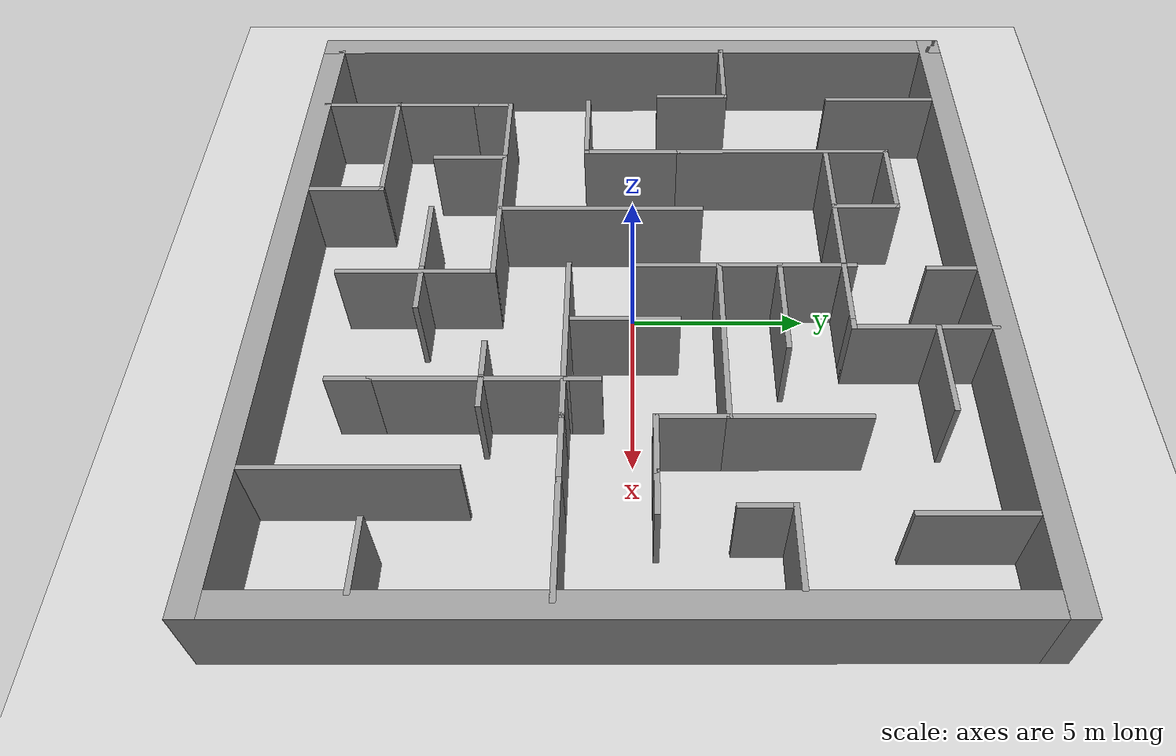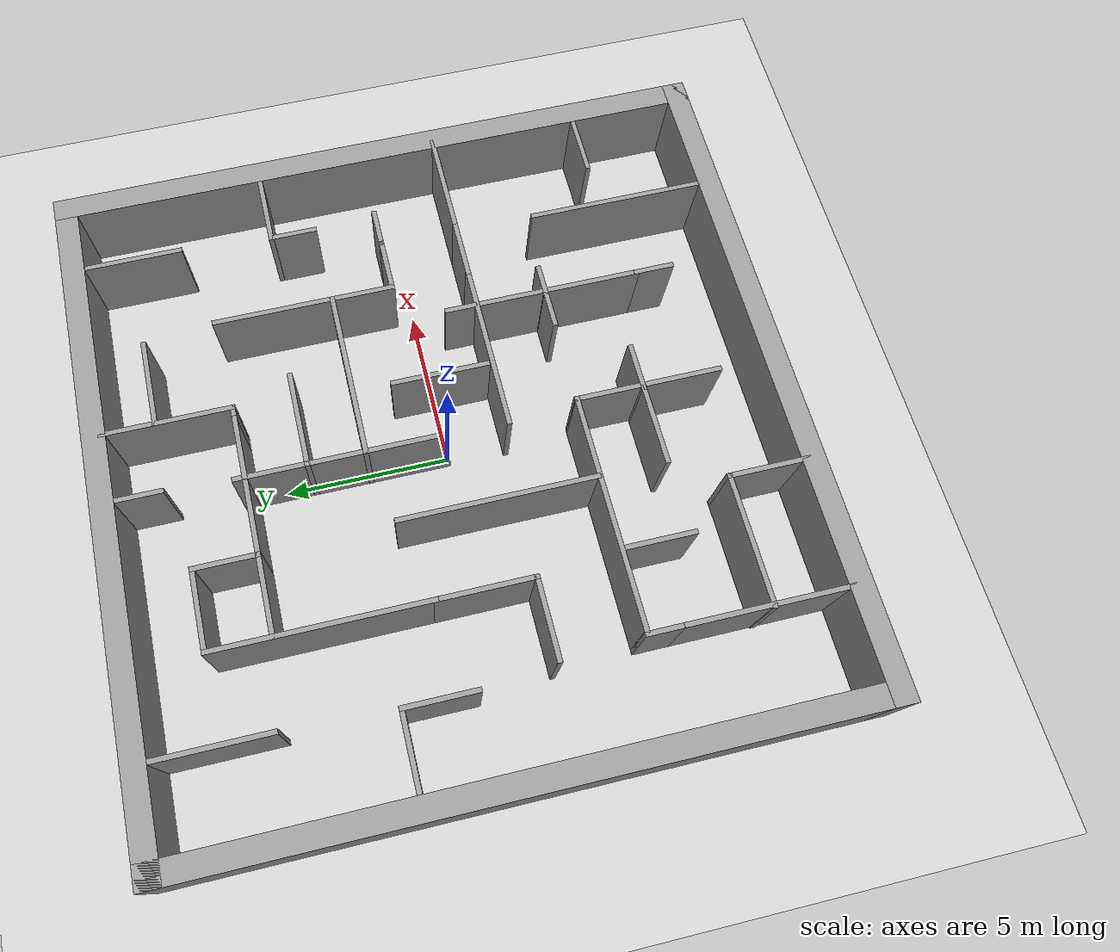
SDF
<sdf version="1.7">
 <world name="default">
  <light name="sun" type="directional">
   <pose>0 0 10 0 -0 0</pose>
   <diffuse>0.8 0.8 0.8 1</diffuse>
   <specular>0.2 0.2 0.2 1</specular>
   <attenuation>
    <range>1000</range>
    <constant>0.9</constant>
    <linear>0.01</linear>
    <quadratic>0.001</quadratic>
   </attenuation>
   <direction>-0.5 0.1 -0.9</direction>
   <spot><inner_angle>0</inner_angle><outer_angle>0</outer_angle><falloff>0</falloff></spot>
  </light>
  <model name="ground_plane">
   <static>1</static>
   <link name="link">
    <collision name="collision">
     <geometry><plane><normal>0 0 1</normal><size>100 100</size></plane></geometry>
     <surface><friction><ode><mu>100</mu><mu2>50</mu2></ode></friction></surface>
    </collision>
    <visual name="visual">
     <cast_shadows>0</cast_shadows>
     <geometry><plane><normal>0 0 1</normal><size>100 100</size></plane></geometry>
     <material>
      <script><uri>file://media/materials/scripts/gazebo.material</uri><name>Gazebo/Grey</name></script>
     </material>
    </visual>
   </link>
  </model>
  <gravity>0 0 -9.8</gravity>
  <magnetic_field>6e-06 2.3e-05 -4.2e-05</magnetic_field>
  <atmosphere type="adiabatic"/>
  <physics type="ode">
   <max_step_size>0.001</max_step_size>
   <real_time_factor>1</real_time_factor>
   <real_time_update_rate>1000</real_time_update_rate>
  </physics>
  <scene><ambient>0.4 0.4 0.4 1</ambient><background>0.7 0.7 0.7 1</background><shadows>1</shadows></scene>
  <spherical_coordinates>
   <surface_model>EARTH_WGS84</surface_model>
   <latitude_deg>0</latitude_deg>
   <longitude_deg>0</longitude_deg>
   <elevation>0</elevation>
   <heading_deg>0</heading_deg>
  </spherical_coordinates>
  <model name="demo09">
   <link name="Wall_0">
    <collision name="Wall_0_Collision">
     <geometry><box><size>20.7 0.7 2.5</size></box></geometry>
     <pose>0 0 1.25 0 -0 0</pose>
    </collision>
    <visual name="Wall_0_Visual">
     <pose>0 0 1.25 0 -0 0</pose>
     <geometry><box><size>20.7 0.7 2.5</size></box></geometry>
     <material>
      <script><uri>file://media/materials/scripts/gazebo.material</uri><name>Gazebo/Grey</name></script>
      <ambient>1 1 1 1</ambient>
     </material>
     <meta><layer>0</layer></meta>
    </visual>
    <pose>-10 0 0 0 -0 1.5708</pose>
   </link>
   <link name="Wall_100">
    <collision name="Wall_100_Collision">
     <geometry><box><size>4.5 0.15 2.5</size></box></geometry>
     <pose>0 0 1.25 0 -0 0</pose>
    </collision>
    <visual name="Wall_100_Visual">
     <pose>0 0 1.25 0 -0 0</pose>
     <geometry><box><size>4.5 0.15 2.5</size></box></geometry>
     <material>
      <script><uri>file://media/materials/scripts/gazebo.material</uri><name>Gazebo/Grey</name></script>
      <ambient>1 1 1 1</ambient>
     </material>
     <meta><layer>0</layer></meta>
    </visual>
    <pose>0.1 -6.075 0 0 -0 -1.5708</pose>
   </link>
   <link name="Wall_103">
    <collision name="Wall_103_Collision">
     <geometry><box><size>5.25 0.15 2.5</size></box></geometry>
     <pose>0 0 1.25 0 -0 0</pose>
    </collision>
    <visual name="Wall_103_Visual">
     <pose>0 0 1.25 0 -0 0</pose>
     <geometry><box><size>5.25 0.15 2.5</size></box></geometry>
     <material>
      <script><uri>file://media/materials/scripts/gazebo.material</uri><name>Gazebo/Grey</name></script>
      <ambient>1 1 1 1</ambient>
     </material>
     <meta><layer>0</layer></meta>
    </visual>
    <pose>2.39054 -1.78739 0 0 -0 0</pose>
   </link>
   <link name="Wall_107">
    <collision name="Wall_107_Collision">
     <geometry><box><size>2.25 0.15 2.5</size></box></geometry>
     <pose>0 0 1.25 0 -0 0</pose>
    </collision>
    <visual name="Wall_107_Visual">
     <pose>0 0 1.25 0 -0 0</pose>
     <geometry><box><size>2.25 0.15 2.5</size></box></geometry>
     <material>
      <script><uri>file://media/materials/scripts/gazebo.material</uri><name>Gazebo/Grey</name></script>
      <ambient>1 1 1 1</ambient>
     </material>
     <meta><layer>0</layer></meta>
    </visual>
    <pose>-0.11742 5.19169 0 0 -0 1.5708</pose>
   </link>
   <link name="Wall_109">
    <collision name="Wall_109_Collision">
     <geometry><box><size>2.5 0.15 2.5</size></box></geometry>
     <pose>0 0 1.25 0 -0 0</pose>
    </collision>
    <visual name="Wall_109_Visual">
     <pose>0 0 1.25 0 -0 0</pose>
     <geometry><box><size>2.5 0.15 2.5</size></box></geometry>
     <material>
      <script><uri>file://media/materials/scripts/gazebo.material</uri><name>Gazebo/Grey</name></script>
      <ambient>1 1 1 1</ambient>
     </material>
     <meta><layer>0</layer></meta>
    </visual>
    <pose>-3.62176 7.79346 0 0 -0 0</pose>
   </link>
   <link name="Wall_110">
    <collision name="Wall_110_Collision">
     <geometry><box><size>2 0.15 2.5</size></box></geometry>
     <pose>0 0 1.25 0 -0 0</pose>
    </collision>
    <visual name="Wall_110_Visual">
     <pose>0 0 1.25 0 -0 0</pose>
     <geometry><box><size>2 0.15 2.5</size></box></geometry>
     <material>
      <script><uri>file://media/materials/scripts/gazebo.material</uri><name>Gazebo/Grey</name></script>
      <ambient>1 1 1 1</ambient>
     </material>
     <meta><layer>0</layer></meta>
    </visual>
    <pose>-2.44676 6.86846 0 0 -0 -1.5708</pose>
   </link>
   <link name="Wall_112">
    <collision name="Wall_112_Collision">
     <geometry><box><size>1.5 0.15 2.5</size></box></geometry>
     <pose>0 0 1.25 0 -0 0</pose>
    </collision>
    <visual name="Wall_112_Visual">
     <pose>0 0 1.25 0 -0 0</pose>
     <geometry><box><size>1.5 0.15 2.5</size></box></geometry>
     <material>
      <script><uri>file://media/materials/scripts/gazebo.material</uri><name>Gazebo/Grey</name></script>
      <ambient>1 1 1 1</ambient>
     </material>
     <meta><layer>0</layer></meta>
    </visual>
    <pose>0.005376 8.98286 0 0 -0 -1.5708</pose>
   </link>
   <link name="Wall_114">
    <collision name="Wall_114_Collision">
     <geometry><box><size>2.5 0.15 2.5</size></box></geometry>
     <pose>0 0 1.25 0 -0 0</pose>
    </collision>
    <visual name="Wall_114_Visual">
     <pose>0 0 1.25 0 -0 0</pose>
     <geometry><box><size>2.5 0.15 2.5</size></box></geometry>
     <material>
      <script><uri>file://media/materials/scripts/gazebo.material</uri><name>Gazebo/Grey</name></script>
      <ambient>1 1 1 1</ambient>
     </material>
     <meta><layer>0</layer></meta>
    </visual>
    <pose>-3.62176 5.94346 0 0 -0 3.14159</pose>
   </link>
   <link name="Wall_116">
    <collision name="Wall_116_Collision">
     <geometry><box><size>2.5 0.15 2.5</size></box></geometry>
     <pose>0 0 1.25 0 -0 0</pose>
    </collision>
    <visual name="Wall_116_Visual">
     <pose>0 0 1.25 0 -0 0</pose>
     <geometry><box><size>2.5 0.15 2.5</size></box></geometry>
     <material>
      <script><uri>file://media/materials/scripts/gazebo.material</uri><name>Gazebo/Grey</name></script>
      <ambient>1 1 1 1</ambient>
     </material>
     <meta><layer>0</layer></meta>
    </visual>
    <pose>-1.27176 5.94346 0 0 -0 0</pose>
   </link>
   <link name="Wall_117">
    <collision name="Wall_117_Collision">
     <geometry><box><size>2 0.15 2.5</size></box></geometry>
     <pose>0 0 1.25 0 -0 0</pose>
    </collision>
    <visual name="Wall_117_Visual">
     <pose>0 0 1.25 0 -0 0</pose>
     <geometry><box><size>2 0.15 2.5</size></box></geometry>
     <material>
      <script><uri>file://media/materials/scripts/gazebo.material</uri><name>Gazebo/Grey</name></script>
      <ambient>1 1 1 1</ambient>
     </material>
     <meta><layer>0</layer></meta>
    </visual>
    <pose>0.828236 5.94346 0 0 -0 0</pose>
   </link>
   <link name="Wall_118">
    <collision name="Wall_118_Collision">
     <geometry><box><size>0.5 0.15 2.5</size></box></geometry>
     <pose>0 0 1.25 0 -0 0</pose>
    </collision>
    <visual name="Wall_118_Visual">
     <pose>0 0 1.25 0 -0 0</pose>
     <geometry><box><size>0.5 0.15 2.5</size></box></geometry>
     <material>
      <script><uri>file://media/materials/scripts/gazebo.material</uri><name>Gazebo/Grey</name></script>
      <ambient>1 1 1 1</ambient>
     </material>
     <meta><layer>0</layer></meta>
    </visual>
    <pose>1.92824 5.94346 0 0 -0 0</pose>
   </link>
   <link name="Wall_119">
    <collision name="Wall_119_Collision">
     <geometry><box><size>4 0.15 2.5</size></box></geometry>
     <pose>0 0 1.25 0 -0 0</pose>
    </collision>
    <visual name="Wall_119_Visual">
     <pose>0 0 1.25 0 -0 0</pose>
     <geometry><box><size>4 0.15 2.5</size></box></geometry>
     <material>
      <script><uri>file://media/materials/scripts/gazebo.material</uri><name>Gazebo/Grey</name></script>
      <ambient>1 1 1 1</ambient>
     </material>
     <meta><layer>0</layer></meta>
    </visual>
    <pose>2.10324 7.86846 0 0 -0 1.5708</pose>
   </link>
   <link name="Wall_121">
    <collision name="Wall_121_Collision">
     <geometry><box><size>2 0.15 2.5</size></box></geometry>
     <pose>0 0 1.25 0 -0 0</pose>
    </collision>
    <visual name="Wall_121_Visual">
     <pose>0 0 1.25 0 -0 0</pose>
     <geometry><box><size>2 0.15 2.5</size></box></geometry>
     <material>
      <script><uri>file://media/materials/scripts/gazebo.material</uri><name>Gazebo/Grey</name></script>
      <ambient>1 1 1 1</ambient>
     </material>
     <meta><layer>0</layer></meta>
    </visual>
    <pose>5.86554 -1.78739 0 0 -0 0</pose>
   </link>
   <link name="Wall_123">
    <collision name="Wall_123_Collision">
     <geometry><box><size>5.25 0.15 2.5</size></box></geometry>
     <pose>0 0 1.25 0 -0 0</pose>
    </collision>
    <visual name="Wall_123_Visual">
     <pose>0 0 1.25 0 -0 0</pose>
     <geometry><box><size>5.25 0.15 2.5</size></box></geometry>
     <material>
      <script><uri>file://media/materials/scripts/gazebo.material</uri><name>Gazebo/Grey</name></script>
      <ambient>1 1 1 1</ambient>
     </material>
     <meta><layer>0</layer></meta>
    </visual>
    <pose>2.42004 2.43987 0 0 -0 0</pose>
   </link>
   <link name="Wall_124">
    <collision name="Wall_124_Collision">
     <geometry><box><size>2 0.15 2.5</size></box></geometry>
     <pose>0 0 1.25 0 -0 0</pose>
    </collision>
    <visual name="Wall_124_Visual">
     <pose>0 0 1.25 0 -0 0</pose>
     <geometry><box><size>2 0.15 2.5</size></box></geometry>
     <material>
      <script><uri>file://media/materials/scripts/gazebo.material</uri><name>Gazebo/Grey</name></script>
      <ambient>1 1 1 1</ambient>
     </material>
     <meta><layer>0</layer></meta>
    </visual>
    <pose>4.97004 1.51487 0 0 -0 -1.5708</pose>
   </link>
   <link name="Wall_126">
    <collision name="Wall_126_Collision">
     <geometry><box><size>1.75 0.15 2.5</size></box></geometry>
     <pose>0 0 1.25 0 -0 0</pose>
    </collision>
    <visual name="Wall_126_Visual">
     <pose>0 0 1.25 0 -0 0</pose>
     <geometry><box><size>1.75 0.15 2.5</size></box></geometry>
     <material>
      <script><uri>file://media/materials/scripts/gazebo.material</uri><name>Gazebo/Grey</name></script>
      <ambient>1 1 1 1</ambient>
     </material>
     <meta><layer>0</layer></meta>
    </visual>
    <pose>5.77004 0.589873 0 0 -0 0</pose>
   </link>
   <link name="Wall_128">
    <collision name="Wall_128_Collision">
     <geometry><box><size>3.25 0.15 2.5</size></box></geometry>
     <pose>0 0 1.25 0 -0 0</pose>
    </collision>
    <visual name="Wall_128_Visual">
     <pose>0 0 1.25 0 -0 0</pose>
     <geometry><box><size>3.25 0.15 2.5</size></box></geometry>
     <material>
      <script><uri>file://media/materials/scripts/gazebo.material</uri><name>Gazebo/Grey</name></script>
      <ambient>1 1 1 1</ambient>
     </material>
     <meta><layer>0</layer></meta>
    </visual>
    <pose>8.34054 -1.78739 0 0 -0 0</pose>
   </link>
   <link name="Wall_130">
    <collision name="Wall_130_Collision">
     <geometry><box><size>3 0.15 2.5</size></box></geometry>
     <pose>0 0 1.25 0 -0 0</pose>
    </collision>
    <visual name="Wall_130_Visual">
     <pose>0 0 1.25 0 -0 0</pose>
     <geometry><box><size>3 0.15 2.5</size></box></geometry>
     <material>
      <script><uri>file://media/materials/scripts/gazebo.material</uri><name>Gazebo/Grey</name></script>
      <ambient>1 1 1 1</ambient>
     </material>
     <meta><layer>0</layer></meta>
    </visual>
    <pose>1.80987 -0.195247 0 0 -0 1.5708</pose>
   </link>
   <link name="Wall_132">
    <collision name="Wall_132_Collision">
     <geometry><box><size>1 0.15 2.5</size></box></geometry>
     <pose>0 0 1.25 0 -0 0</pose>
    </collision>
    <visual name="Wall_132_Visual">
     <pose>0 0 1.25 0 -0 0</pose>
     <geometry><box><size>1 0.15 2.5</size></box></geometry>
     <material>
      <script><uri>file://media/materials/scripts/gazebo.material</uri><name>Gazebo/Grey</name></script>
      <ambient>1 1 1 1</ambient>
     </material>
     <meta><layer>0</layer></meta>
    </visual>
    <pose>3.79482 -1.28547 0 0 -0 1.5708</pose>
   </link>
   <link name="Wall_134">
    <collision name="Wall_134_Collision">
     <geometry><box><size>3.75 0.15 2.5</size></box></geometry>
     <pose>0 0 1.25 0 -0 0</pose>
    </collision>
    <visual name="Wall_134_Visual">
     <pose>0 0 1.25 0 -0 0</pose>
     <geometry><box><size>3.75 0.15 2.5</size></box></geometry>
     <material>
      <script><uri>file://media/materials/scripts/gazebo.material</uri><name>Gazebo/Grey</name></script>
      <ambient>1 1 1 1</ambient>
     </material>
     <meta><layer>0</layer></meta>
    </visual>
    <pose>4.97004 4.23987 0 0 -0 1.5708</pose>
   </link>
   <link name="Wall_136">
    <collision name="Wall_136_Collision">
     <geometry><box><size>3 0.15 2.5</size></box></geometry>
     <pose>0 0 1.25 0 -0 0</pose>
    </collision>
    <visual name="Wall_136_Visual">
     <pose>0 0 1.25 0 -0 0</pose>
     <geometry><box><size>3 0.15 2.5</size></box></geometry>
     <material>
      <script><uri>file://media/materials/scripts/gazebo.material</uri><name>Gazebo/Grey</name></script>
      <ambient>1 1 1 1</ambient>
     </material>
     <meta><layer>0</layer></meta>
    </visual>
    <pose>1.30758 4.14169 0 0 -0 0</pose>
   </link>
   <link name="Wall_138">
    <collision name="Wall_138_Collision">
     <geometry><box><size>2.25 0.15 2.5</size></box></geometry>
     <pose>0 0 1.25 0 -0 0</pose>
    </collision>
    <visual name="Wall_138_Visual">
     <pose>0 0 1.25 0 -0 0</pose>
     <geometry><box><size>2.25 0.15 2.5</size></box></geometry>
     <material>
      <script><uri>file://media/materials/scripts/gazebo.material</uri><name>Gazebo/Grey</name></script>
      <ambient>1 1 1 1</ambient>
     </material>
     <meta><layer>0</layer></meta>
    </visual>
    <pose>8.56433 3.88347 0 0 -0 3.14159</pose>
   </link>
   <link name="Wall_140">
    <collision name="Wall_140_Collision">
     <geometry><box><size>1.5 0.15 2.5</size></box></geometry>
     <pose>0 0 1.25 0 -0 0</pose>
    </collision>
    <visual name="Wall_140_Visual">
     <pose>0 0 1.25 0 -0 0</pose>
     <geometry><box><size>1.5 0.15 2.5</size></box></geometry>
     <material>
      <script><uri>file://media/materials/scripts/gazebo.material</uri><name>Gazebo/Grey</name></script>
      <ambient>1 1 1 1</ambient>
     </material>
     <meta><layer>0</layer></meta>
    </visual>
    <pose>7.51433 3.20847 0 0 -0 -1.5708</pose>
   </link>
   <link name="Wall_142">
    <collision name="Wall_142_Collision">
     <geometry><box><size>1.25 0.15 2.5</size></box></geometry>
     <pose>0 0 1.25 0 -0 0</pose>
    </collision>
    <visual name="Wall_142_Visual">
     <pose>0 0 1.25 0 -0 0</pose>
     <geometry><box><size>1.25 0.15 2.5</size></box></geometry>
     <material>
      <script><uri>file://media/materials/scripts/gazebo.material</uri><name>Gazebo/Grey</name></script>
      <ambient>1 1 1 1</ambient>
     </material>
     <meta><layer>0</layer></meta>
    </visual>
    <pose>7.12004 0.589873 0 0 -0 0</pose>
   </link>
   <link name="Wall_144">
    <collision name="Wall_144_Collision">
     <geometry><box><size>3 0.15 2.5</size></box></geometry>
     <pose>0 0 1.25 0 -0 0</pose>
    </collision>
    <visual name="Wall_144_Visual">
     <pose>0 0 1.25 0 -0 0</pose>
     <geometry><box><size>3 0.15 2.5</size></box></geometry>
     <material>
      <script><uri>file://media/materials/scripts/gazebo.material</uri><name>Gazebo/Grey</name></script>
      <ambient>1 1 1 1</ambient>
     </material>
     <meta><layer>0</layer></meta>
    </visual>
    <pose>7.7196 8.14264 0 0 -0 -1.5708</pose>
   </link>
   <link name="Wall_147">
    <collision name="Wall_147_Collision">
     <geometry><box><size>2.75 0.15 2.5</size></box></geometry>
     <pose>0 0 1.25 0 -0 0</pose>
    </collision>
    <visual name="Wall_147_Visual">
     <pose>0 0 1.25 0 -0 0</pose>
     <geometry><box><size>2.75 0.15 2.5</size></box></geometry>
     <material>
      <script><uri>file://media/materials/scripts/gazebo.material</uri><name>Gazebo/Grey</name></script>
      <ambient>1 1 1 1</ambient>
     </material>
     <meta><layer>0</layer></meta>
    </visual>
    <pose>3.42566 8.21427 0 0 -0 0</pose>
   </link>
   <link name="Wall_150">
    <collision name="Wall_150_Collision">
     <geometry><box><size>4 0.15 2.5</size></box></geometry>
     <pose>0 0 1.25 0 -0 0</pose>
    </collision>
    <visual name="Wall_150_Visual">
     <pose>0 0 1.25 0 -0 0</pose>
     <geometry><box><size>4 0.15 2.5</size></box></geometry>
     <material>
      <script><uri>file://media/materials/scripts/gazebo.material</uri><name>Gazebo/Grey</name></script>
      <ambient>1 1 1 1</ambient>
     </material>
     <meta><layer>0</layer></meta>
    </visual>
    <pose>-5.10717 -7.48487 0 0 -0 0</pose>
   </link>
   <link name="Wall_152">
    <collision name="Wall_152_Collision">
     <geometry><box><size>2.25 0.15 2.5</size></box></geometry>
     <pose>0 0 1.25 0 -0 0</pose>
    </collision>
    <visual name="Wall_152_Visual">
     <pose>0 0 1.25 0 -0 0</pose>
     <geometry><box><size>2.25 0.15 2.5</size></box></geometry>
     <material>
      <script><uri>file://media/materials/scripts/gazebo.material</uri><name>Gazebo/Grey</name></script>
      <ambient>1 1 1 1</ambient>
     </material>
     <meta><layer>0</layer></meta>
    </visual>
    <pose>-4.55098 -4.97098 0 0 -0 -1.5708</pose>
   </link>
   <link name="Wall_154">
    <collision name="Wall_154_Collision">
     <geometry><box><size>2.5 0.15 2.5</size></box></geometry>
     <pose>0 0 1.25 0 -0 0</pose>
    </collision>
    <visual name="Wall_154_Visual">
     <pose>0 0 1.25 0 -0 0</pose>
     <geometry><box><size>2.5 0.15 2.5</size></box></geometry>
     <material>
      <script><uri>file://media/materials/scripts/gazebo.material</uri><name>Gazebo/Grey</name></script>
      <ambient>1 1 1 1</ambient>
     </material>
     <meta><layer>0</layer></meta>
    </visual>
    <pose>-1.16962 -5.90593 0 0 -0 3.14159</pose>
   </link>
   <link name="Wall_157">
    <collision name="Wall_157_Collision">
     <geometry><box><size>5.25 0.15 2.5</size></box></geometry>
     <pose>0 0 1.25 0 -0 0</pose>
    </collision>
    <visual name="Wall_157_Visual">
     <pose>0 0 1.25 0 -0 0</pose>
     <geometry><box><size>5.25 0.15 2.5</size></box></geometry>
     <material>
      <script><uri>file://media/materials/scripts/gazebo.material</uri><name>Gazebo/Grey</name></script>
      <ambient>1 1 1 1</ambient>
     </material>
     <meta><layer>0</layer></meta>
    </visual>
    <pose>3.79482 -4.26047 0 0 -0 -1.5708</pose>
   </link>
   <link name="Wall_159">
    <collision name="Wall_159_Collision">
     <geometry><box><size>1.5 0.15 2.5</size></box></geometry>
     <pose>0 0 1.25 0 -0 0</pose>
    </collision>
    <visual name="Wall_159_Visual">
     <pose>0 0 1.25 0 -0 0</pose>
     <geometry><box><size>1.5 0.15 2.5</size></box></geometry>
     <material>
      <script><uri>file://media/materials/scripts/gazebo.material</uri><name>Gazebo/Grey</name></script>
      <ambient>1 1 1 1</ambient>
     </material>
     <meta><layer>0</layer></meta>
    </visual>
    <pose>0.680376 -5.90593 0 0 -0 0</pose>
   </link>
   <link name="Wall_161">
    <collision name="Wall_161_Collision">
     <geometry><box><size>1.25 0.15 2.5</size></box></geometry>
     <pose>0 0 1.25 0 -0 0</pose>
    </collision>
    <visual name="Wall_161_Visual">
     <pose>0 0 1.25 0 -0 0</pose>
     <geometry><box><size>1.25 0.15 2.5</size></box></geometry>
     <material>
      <script><uri>file://media/materials/scripts/gazebo.material</uri><name>Gazebo/Grey</name></script>
      <ambient>1 1 1 1</ambient>
     </material>
     <meta><layer>0</layer></meta>
    </visual>
    <pose>3.19971 -3.92098 0 0 -0 3.14159</pose>
   </link>
   <link name="Wall_163">
    <collision name="Wall_163_Collision">
     <geometry><box><size>1.25 0.15 2.5</size></box></geometry>
     <pose>0 0 1.25 0 -0 0</pose>
    </collision>
    <visual name="Wall_163_Visual">
     <pose>0 0 1.25 0 -0 0</pose>
     <geometry><box><size>1.25 0.15 2.5</size></box></geometry>
     <material>
      <script><uri>file://media/materials/scripts/gazebo.material</uri><name>Gazebo/Grey</name></script>
      <ambient>1 1 1 1</ambient>
     </material>
     <meta><layer>0</layer></meta>
    </visual>
    <pose>3.79482 -7.36047 0 0 -0 -1.5708</pose>
   </link>
   <link name="Wall_166">
    <collision name="Wall_166_Collision">
     <geometry><box><size>2.5 0.15 2.5</size></box></geometry>
     <pose>0 0 1.25 0 -0 0</pose>
    </collision>
    <visual name="Wall_166_Visual">
     <pose>0 0 1.25 0 -0 0</pose>
     <geometry><box><size>2.5 0.15 2.5</size></box></geometry>
     <material>
      <script><uri>file://media/materials/scripts/gazebo.material</uri><name>Gazebo/Grey</name></script>
      <ambient>1 1 1 1</ambient>
     </material>
     <meta><layer>0</layer></meta>
    </visual>
    <pose>-3.18216 -8.65986 0 0 -0 -1.5708</pose>
   </link>
   <link name="Wall_168">
    <collision name="Wall_168_Collision">
     <geometry><box><size>5.5 0.15 2.5</size></box></geometry>
     <pose>0 0 1.25 0 -0 0</pose>
    </collision>
    <visual name="Wall_168_Visual">
     <pose>0 0 1.25 0 -0 0</pose>
     <geometry><box><size>5.5 0.15 2.5</size></box></geometry>
     <material>
      <script><uri>file://media/materials/scripts/gazebo.material</uri><name>Gazebo/Grey</name></script>
      <ambient>1 1 1 1</ambient>
     </material>
     <meta><layer>0</layer></meta>
    </visual>
    <pose>6.45646 -6.93015 0 0 -0 1.5708</pose>
   </link>
   <link name="Wall_170">
    <collision name="Wall_170_Collision">
     <geometry><box><size>1 0.15 2.5</size></box></geometry>
     <pose>0 0 1.25 0 -0 0</pose>
    </collision>
    <visual name="Wall_170_Visual">
     <pose>0 0 1.25 0 -0 0</pose>
     <geometry><box><size>1 0.15 2.5</size></box></geometry>
     <material>
      <script><uri>file://media/materials/scripts/gazebo.material</uri><name>Gazebo/Grey</name></script>
      <ambient>1 1 1 1</ambient>
     </material>
     <meta><layer>0</layer></meta>
    </visual>
    <pose>4.17471 -3.92098 0 0 -0 0</pose>
   </link>
   <link name="Wall_172">
    <collision name="Wall_172_Collision">
     <geometry><box><size>2 0.15 2.5</size></box></geometry>
     <pose>0 0 1.25 0 -0 0</pose>
    </collision>
    <visual name="Wall_172_Visual">
     <pose>0 0 1.25 0 -0 0</pose>
     <geometry><box><size>2 0.15 2.5</size></box></geometry>
     <material>
      <script><uri>file://media/materials/scripts/gazebo.material</uri><name>Gazebo/Grey</name></script>
      <ambient>1 1 1 1</ambient>
     </material>
     <meta><layer>0</layer></meta>
    </visual>
    <pose>8.77955 -6.40217 0 0 -0 3.14159</pose>
   </link>
   <link name="Wall_2">
    <collision name="Wall_2_Collision">
     <geometry><box><size>20.7 0.7 2.5</size></box></geometry>
     <pose>0 0 1.25 0 -0 0</pose>
    </collision>
    <visual name="Wall_2_Visual">
     <pose>0 0 1.25 0 -0 0</pose>
     <geometry><box><size>20.7 0.7 2.5</size></box></geometry>
     <material>
      <script><uri>file://media/materials/scripts/gazebo.material</uri><name>Gazebo/Grey</name></script>
      <ambient>1 1 1 1</ambient>
     </material>
     <meta><layer>0</layer></meta>
    </visual>
    <pose>0 -10 0 0 -0 0</pose>
   </link>
   <link name="Wall_4">
    <collision name="Wall_4_Collision">
     <geometry><box><size>20.7 0.7 2.5</size></box></geometry>
     <pose>0 0 1.25 0 -0 0</pose>
    </collision>
    <visual name="Wall_4_Visual">
     <pose>0 0 1.25 0 -0 0</pose>
     <geometry><box><size>20.7 0.7 2.5</size></box></geometry>
     <material>
      <script><uri>file://media/materials/scripts/gazebo.material</uri><name>Gazebo/Grey</name></script>
      <ambient>1 1 1 1</ambient>
     </material>
     <meta><layer>0</layer></meta>
    </visual>
    <pose>10 0 0 0 -0 1.5708</pose>
   </link>
   <link name="Wall_6">
    <collision name="Wall_6_Collision">
     <geometry><box><size>20.7 0.7 2.5</size></box></geometry>
     <pose>0 0 1.25 0 -0 0</pose>
    </collision>
    <visual name="Wall_6_Visual">
     <pose>0 0 1.25 0 -0 0</pose>
     <geometry><box><size>20.7 0.7 2.5</size></box></geometry>
     <material>
      <script><uri>file://media/materials/scripts/gazebo.material</uri><name>Gazebo/Grey</name></script>
      <ambient>1 1 1 1</ambient>
     </material>
     <meta><layer>0</layer></meta>
    </visual>
    <pose>0 10 0 0 -0 0</pose>
   </link>
   <link name="Wall_70">
    <collision name="Wall_70_Collision">
     <geometry><box><size>4.944 0.15 2.5</size></box></geometry>
     <pose>0 0 1.25 0 -0 0</pose>
    </collision>
    <visual name="Wall_70_Visual">
     <pose>0 0 1.25 0 -0 0</pose>
     <geometry><box><size>4.944 0.15 2.5</size></box></geometry>
     <material>
      <script><uri>file://media/materials/scripts/gazebo.material</uri><name>Gazebo/Grey</name></script>
      <ambient>1 1 1 1</ambient>
     </material>
     <meta><layer>0</layer></meta>
    </visual>
    <pose>-7 -7.397 0 0 -0 1.5708</pose>
   </link>
   <link name="Wall_72">
    <collision name="Wall_72_Collision">
     <geometry><box><size>3.5 0.15 2.5</size></box></geometry>
     <pose>0 0 1.25 0 -0 0</pose>
    </collision>
    <visual name="Wall_72_Visual">
     <pose>0 0 1.25 0 -0 0</pose>
     <geometry><box><size>3.5 0.15 2.5</size></box></geometry>
     <material>
      <script><uri>file://media/materials/scripts/gazebo.material</uri><name>Gazebo/Grey</name></script>
      <ambient>1 1 1 1</ambient>
     </material>
     <meta><layer>0</layer></meta>
    </visual>
    <pose>-7.27376 7.96812 0 0 -0 -1.5708</pose>
   </link>
   <link name="Wall_75">
    <collision name="Wall_75_Collision">
     <geometry><box><size>2.5 0.15 2.5</size></box></geometry>
     <pose>0 0 1.25 0 -0 0</pose>
    </collision>
    <visual name="Wall_75_Visual">
     <pose>0 0 1.25 0 -0 0</pose>
     <geometry><box><size>2.5 0.15 2.5</size></box></geometry>
     <material>
      <script><uri>file://media/materials/scripts/gazebo.material</uri><name>Gazebo/Grey</name></script>
      <ambient>1 1 1 1</ambient>
     </material>
     <meta><layer>0</layer></meta>
    </visual>
    <pose>-8.5994 2.96566 0 0 -0 0</pose>
   </link>
   <link name="Wall_77">
    <collision name="Wall_77_Collision">
     <geometry><box><size>6.5 0.15 2.5</size></box></geometry>
     <pose>0 0 1.25 0 -0 0</pose>
    </collision>
    <visual name="Wall_77_Visual">
     <pose>0 0 1.25 0 -0 0</pose>
     <geometry><box><size>6.5 0.15 2.5</size></box></geometry>
     <material>
      <script><uri>file://media/materials/scripts/gazebo.material</uri><name>Gazebo/Grey</name></script>
      <ambient>1 1 1 1</ambient>
     </material>
     <meta><layer>0</layer></meta>
    </visual>
    <pose>-4.79676 4.61846 0 0 -0 1.5708</pose>
   </link>
   <link name="Wall_79">
    <collision name="Wall_79_Collision">
     <geometry><box><size>3 0.15 2.5</size></box></geometry>
     <pose>0 0 1.25 0 -0 0</pose>
    </collision>
    <visual name="Wall_79_Visual">
     <pose>0 0 1.25 0 -0 0</pose>
     <geometry><box><size>3 0.15 2.5</size></box></geometry>
     <material>
      <script><uri>file://media/materials/scripts/gazebo.material</uri><name>Gazebo/Grey</name></script>
      <ambient>1 1 1 1</ambient>
     </material>
     <meta><layer>0</layer></meta>
    </visual>
    <pose>-4.79676 0.018458 0 0 -0 -1.5708</pose>
   </link>
   <link name="Wall_81">
    <collision name="Wall_81_Collision">
     <geometry><box><size>2.5 0.15 2.5</size></box></geometry>
     <pose>0 0 1.25 0 -0 0</pose>
    </collision>
    <visual name="Wall_81_Visual">
     <pose>0 0 1.25 0 -0 0</pose>
     <geometry><box><size>2.5 0.15 2.5</size></box></geometry>
     <material>
      <script><uri>file://media/materials/scripts/gazebo.material</uri><name>Gazebo/Grey</name></script>
      <ambient>1 1 1 1</ambient>
     </material>
     <meta><layer>0</layer></meta>
    </visual>
    <pose>-5.97177 -1.40654 0 0 -0 3.14159</pose>
   </link>
   <link name="Wall_83">
    <collision name="Wall_83_Collision">
     <geometry><box><size>2.25 0.15 2.5</size></box></geometry>
     <pose>0 0 1.25 0 -0 0</pose>
    </collision>
    <visual name="Wall_83_Visual">
     <pose>0 0 1.25 0 -0 0</pose>
     <geometry><box><size>2.25 0.15 2.5</size></box></geometry>
     <material>
      <script><uri>file://media/materials/scripts/gazebo.material</uri><name>Gazebo/Grey</name></script>
      <ambient>1 1 1 1</ambient>
     </material>
     <meta><layer>0</layer></meta>
    </visual>
    <pose>-7.4244 1.91566 0 0 -0 -1.5708</pose>
   </link>
   <link name="Wall_85">
    <collision name="Wall_85_Collision">
     <geometry><box><size>1.25 0.15 2.5</size></box></geometry>
     <pose>0 0 1.25 0 -0 0</pose>
    </collision>
    <visual name="Wall_85_Visual">
     <pose>0 0 1.25 0 -0 0</pose>
     <geometry><box><size>1.25 0.15 2.5</size></box></geometry>
     <material>
      <script><uri>file://media/materials/scripts/gazebo.material</uri><name>Gazebo/Grey</name></script>
      <ambient>1 1 1 1</ambient>
     </material>
     <meta><layer>0</layer></meta>
    </visual>
    <pose>-7 -4.45 0 0 -0 1.5708</pose>
   </link>
   <link name="Wall_86">
    <collision name="Wall_86_Collision">
     <geometry><box><size>7.25 0.15 2.5</size></box></geometry>
     <pose>0 0 1.25 0 -0 0</pose>
    </collision>
    <visual name="Wall_86_Visual">
     <pose>0 0 1.25 0 -0 0</pose>
     <geometry><box><size>7.25 0.15 2.5</size></box></geometry>
     <material>
      <script><uri>file://media/materials/scripts/gazebo.material</uri><name>Gazebo/Grey</name></script>
      <ambient>1 1 1 1</ambient>
     </material>
     <meta><layer>0</layer></meta>
    </visual>
    <pose>-3.45 -3.9 0 0 -0 0</pose>
   </link>
   <link name="Wall_96">
    <collision name="Wall_96_Collision">
     <geometry><box><size>6 0.15 2.5</size></box></geometry>
     <pose>0 0 1.25 0 -0 0</pose>
    </collision>
    <visual name="Wall_96_Visual">
     <pose>0 0 1.25 0 -0 0</pose>
     <geometry><box><size>6 0.15 2.5</size></box></geometry>
     <material>
      <script><uri>file://media/materials/scripts/gazebo.material</uri><name>Gazebo/Grey</name></script>
      <ambient>1 1 1 1</ambient>
     </material>
     <meta><layer>0</layer></meta>
    </visual>
    <pose>-2.34823 -0.922726 0 0 -0 1.5708</pose>
   </link>
   <link name="Wall_98">
    <collision name="Wall_98_Collision">
     <geometry><box><size>4.25 0.15 2.5</size></box></geometry>
     <pose>0 0 1.25 0 -0 0</pose>
    </collision>
    <visual name="Wall_98_Visual">
     <pose>0 0 1.25 0 -0 0</pose>
     <geometry><box><size>4.25 0.15 2.5</size></box></geometry>
     <material>
      <script><uri>file://media/materials/scripts/gazebo.material</uri><name>Gazebo/Grey</name></script>
      <ambient>1 1 1 1</ambient>
     </material>
     <meta><layer>0</layer></meta>
    </visual>
    <pose>-0.11742 2.09169 0 0 -0 -1.5708</pose>
   </link>
   <static>1</static>
  </model>
 </world>
</sdf>
